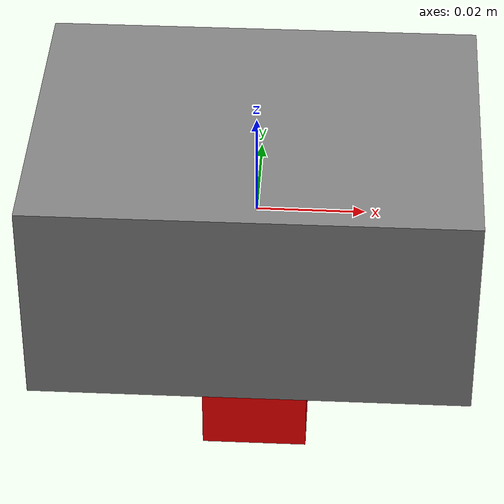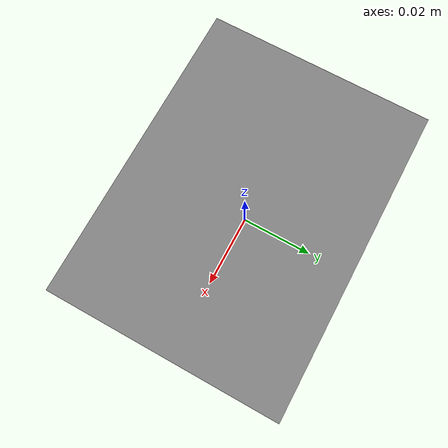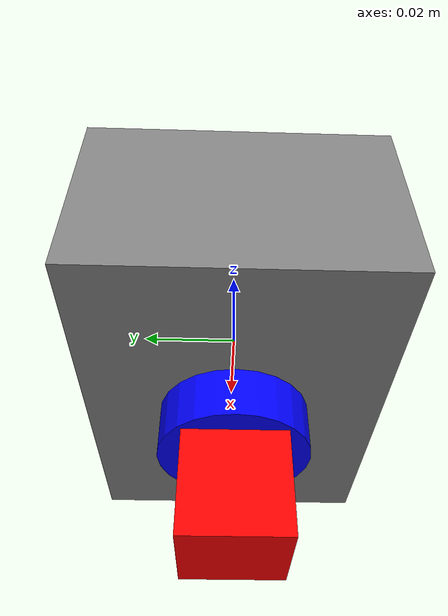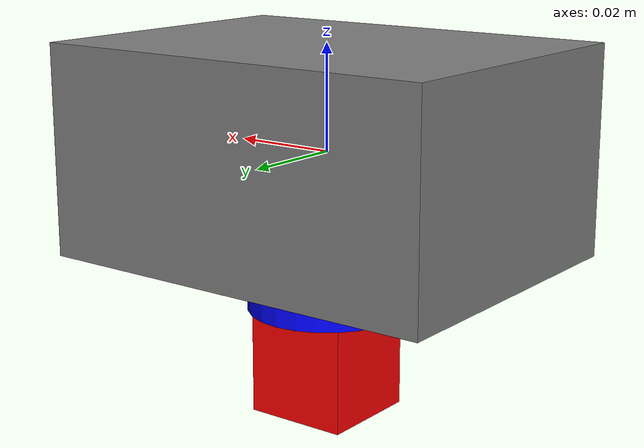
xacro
<?xml version="1.0"?>
<robot xmlns:xacro="http://www.ros.org/wiki/xacro" name="world_camera">

    <link name="world"/>

    <!-- 相机基座 - 固定但可在GUI中调整 -->
    <joint name="world_camera_joint" type="fixed">
        <parent link="world" />
        <child link="world_camera_link" />
        <origin xyz="0 0 0" rpy="0 0 0" />
    </joint>

    <link name="world_camera_link">
        <!-- 相机主体 - 梯台形状 -->
        <visual name="camera_body">
            <origin xyz="0 0 0" rpy="0 0 0"/>
            <geometry><box size="0.08 0.06 0.04"/></geometry>
            <material name="grey">
                <color rgba="0.5 0.5 0.5 1"/>
            </material>
        </visual>

        <!-- 镜头部分 - 朝向指示 -->
        <visual name="camera_lens">
            <origin xyz="0 0 -0.025" rpy="0 0 0"/>
            <geometry><cylinder radius="0.015" length="0.01"/></geometry>
            <material name="blue">
                <color rgba="0 0 1 1"/>
            </material>
        </visual>

        <!-- 朝向箭头 - 红色指示相机朝向 -->
        <visual name="direction_arrow">
            <origin xyz="0 0 -0.04" rpy="0 0 0"/>
            <geometry><box size="0.02 0.02 0.02"/></geometry>
            <material name="red">
                <color rgba="1 0 0 1"/>
            </material>
        </visual>

        <collision>
            <geometry><box size="0.08 0.06 0.04"/></geometry>
        </collision>
        <inertial>
            <mass value="0.1" />
            <origin xyz="0 0 0" rpy="0 0 0"/>
            <inertia ixx="0.001" ixy="0" ixz="0" iyy="0.001" iyz="0" izz="0.001" />
        </inertial>
    </link>

    <!-- 光学框架 (必需) -->
    <joint name="camera_optical_joint" type="fixed">
        <origin xyz="0 0 0" rpy="-1.5708 0 -1.5708" />
        <parent link="world_camera_link" />
        <child link="world_camera_optical_frame" />
    </joint>
    <link name="world_camera_optical_frame"></link>

    <!-- Gazebo插件配置 -->
    <gazebo reference="world_camera_link">
        <sensor type="depth" name="world_camera_depth_sensor">
            <always_on>true</always_on>
            <update_rate>30.0</update_rate>
            <visualize>true</visualize>
            <camera>
                <horizontal_fov>1.047198</horizontal_fov>
                <image>
                    <width>640</width>
                    <height>480</height>
                    <format>R8G8B8</format>
                </image>
                <clip>
                    <near>0.05</near>
                    <far>10</far>
                </clip>
            </camera>
            <plugin name="camera_controller" filename="libgazebo_ros_camera.so">
                <ros>
                    <namespace>world_camera</namespace>
                </ros>
                <camera_name>world_camera</camera_name>
                <frame_name>world_camera_optical_frame</frame_name>
            </plugin>
        </sensor>
    </gazebo>
</robot>
